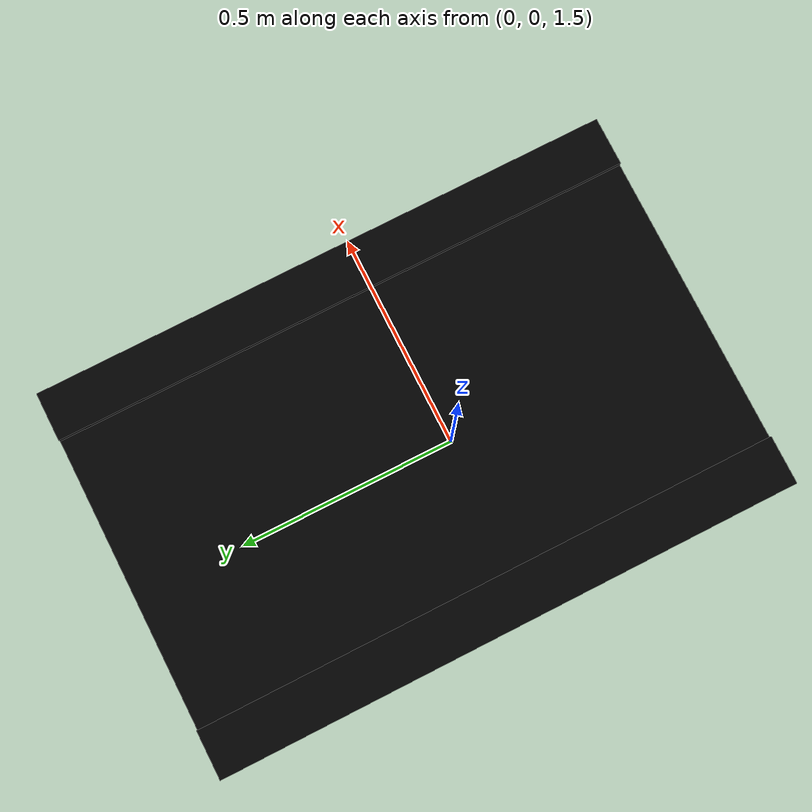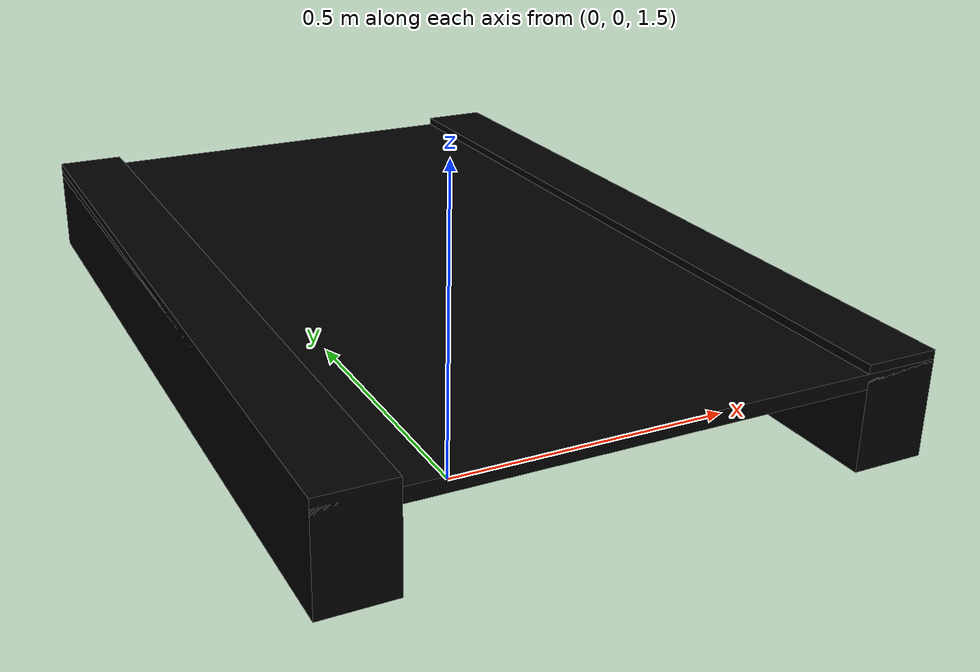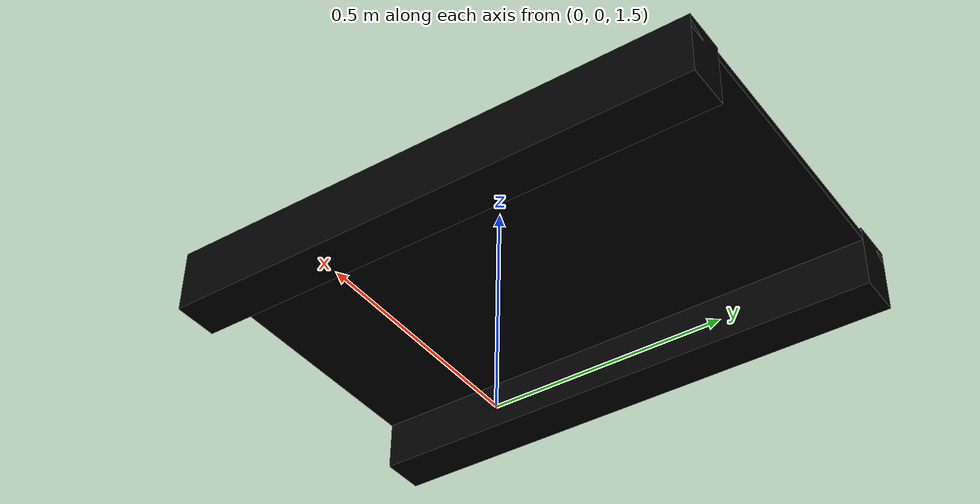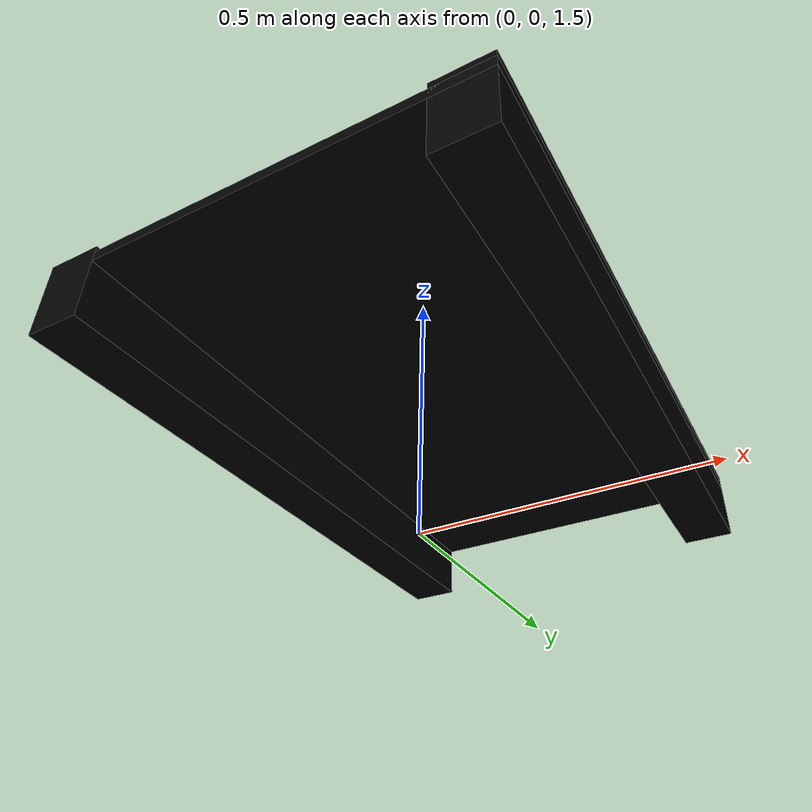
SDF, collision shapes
<?xml version='1.0'?>
<sdf version='1.7'>
  <model name='euro_pallet_slim_V1'>
    <link name='link'>
      <pose>-0.002462 0.088658 1.78053 0 -0 0</pose>
      <inertial>
        <mass>0.5</mass>
        <inertia>
          <ixx>0.1</ixx>
          <ixy>0</ixy>
          <ixz>0</ixz>
          <iyy>0.1</iyy>
          <iyz>0</iyz>
          <izz>0.1</izz>
        </inertia>
        <pose>0 0 0 0 -0 0</pose>
      </inertial>
      <self_collide>0</self_collide>
      <enable_wind>0</enable_wind>
      <kinematic>0</kinematic>
      <gravity>1</gravity>
      <visual name='visual'>
        <pose>0 0 0.05 0 -0 0</pose>
        <geometry>
          <mesh>
            <uri>model://euro_pallet/meshes/pallet.dae</uri>
            <scale>0.1 0.1 0.1</scale>
          </mesh>
        </geometry>
        <material>
          <shader type='pixel'>
            <normal_map>__default__</normal_map>
          </shader>
          <script>
            <name>ModelPreview_1::link::visual_MATERIAL_</name>
            <uri>__default__</uri>
          </script>
          <ambient>0 0 0 1</ambient>
          <diffuse>0 0 0 1</diffuse>
          <specular>0 0 0 1</specular>
          <emissive>0 0 0 1</emissive>
        </material>
        <transparency>0</transparency>
        <cast_shadows>1</cast_shadows>
      </visual>
      <collision name='collision_2'>
        <laser_retro>0</laser_retro>
        <max_contacts>10</max_contacts>
        <pose>-0.35 0 0 0 -0 0</pose>
        <geometry>
          <box>
            <size>0.1 1.2 0.144</size>
          </box>
        </geometry>
        <surface>
          <friction>
            <ode>
              <mu>1</mu>
              <mu2>1</mu2>
              <fdir1>0 0 0</fdir1>
              <slip1>0</slip1>
              <slip2>0</slip2>
            </ode>
            <torsional>
              <coefficient>1</coefficient>
              <patch_radius>0</patch_radius>
              <surface_radius>0</surface_radius>
              <use_patch_radius>1</use_patch_radius>
              <ode>
                <slip>0</slip>
              </ode>
            </torsional>
          </friction>
          <bounce>
            <restitution_coefficient>0</restitution_coefficient>
            <threshold>1e+06</threshold>
          </bounce>
          <contact>
            <collide_without_contact>0</collide_without_contact>
            <collide_without_contact_bitmask>1</collide_without_contact_bitmask>
            <collide_bitmask>1</collide_bitmask>
            <ode>
              <soft_cfm>0</soft_cfm>
              <soft_erp>0.2</soft_erp>
              <kp>1e+13</kp>
              <kd>1</kd>
              <max_vel>0.01</max_vel>
              <min_depth>0</min_depth>
            </ode>
            <bullet>
              <split_impulse>1</split_impulse>
              <split_impulse_penetration_threshold>-0.01</split_impulse_penetration_threshold>
              <soft_cfm>0</soft_cfm>
              <soft_erp>0.2</soft_erp>
              <kp>1e+13</kp>
              <kd>1</kd>
            </bullet>
          </contact>
        </surface>
      </collision>
      <collision name='collision_1'>
        <laser_retro>0</laser_retro>
        <max_contacts>10</max_contacts>
        <pose>0.35 0 0 0 -0 0</pose>
        <geometry>
          <box>
            <size>0.1 1.2 0.144</size>
          </box>
        </geometry>
        <surface>
          <friction>
            <ode>
              <mu>1</mu>
              <mu2>1</mu2>
              <fdir1>0 0 0</fdir1>
              <slip1>0</slip1>
              <slip2>0</slip2>
            </ode>
            <torsional>
              <coefficient>1</coefficient>
              <patch_radius>0</patch_radius>
              <surface_radius>0</surface_radius>
              <use_patch_radius>1</use_patch_radius>
              <ode>
                <slip>0</slip>
              </ode>
            </torsional>
          </friction>
          <bounce>
            <restitution_coefficient>0</restitution_coefficient>
            <threshold>1e+06</threshold>
          </bounce>
          <contact>
            <collide_without_contact>0</collide_without_contact>
            <collide_without_contact_bitmask>1</collide_without_contact_bitmask>
            <collide_bitmask>1</collide_bitmask>
            <ode>
              <soft_cfm>0</soft_cfm>
              <soft_erp>0.2</soft_erp>
              <kp>1e+13</kp>
              <kd>1</kd>
              <max_vel>0.01</max_vel>
              <min_depth>0</min_depth>
            </ode>
            <bullet>
              <split_impulse>1</split_impulse>
              <split_impulse_penetration_threshold>-0.01</split_impulse_penetration_threshold>
              <soft_cfm>0</soft_cfm>
              <soft_erp>0.2</soft_erp>
              <kp>1e+13</kp>
              <kd>1</kd>
            </bullet>
          </contact>
        </surface>
      </collision>
      <collision name='collision'>
        <laser_retro>0</laser_retro>
        <max_contacts>10</max_contacts>
        <pose>0 0 0.05 0 -0 0</pose>
        <geometry>
          <box>
            <size>0.8 1.2 0.02</size>
          </box>
        </geometry>
        <surface>
          <friction>
            <ode>
              <mu>1000</mu>
              <mu2>1000</mu2>
              <fdir1>0 0 0</fdir1>
              <slip1>0</slip1>
              <slip2>0</slip2>
            </ode>
            <torsional>
              <coefficient>1</coefficient>
              <patch_radius>0</patch_radius>
              <surface_radius>0</surface_radius>
              <use_patch_radius>1</use_patch_radius>
              <ode>
                <slip>0</slip>
              </ode>
            </torsional>
          </friction>
          <bounce>
            <restitution_coefficient>0</restitution_coefficient>
            <threshold>1e+06</threshold>
          </bounce>
          <contact>
            <collide_without_contact>0</collide_without_contact>
            <collide_without_contact_bitmask>1</collide_without_contact_bitmask>
            <collide_bitmask>1</collide_bitmask>
            <ode>
              <soft_cfm>0</soft_cfm>
              <soft_erp>0.2</soft_erp>
              <kp>1e+13</kp>
              <kd>1</kd>
              <max_vel>0.01</max_vel>
              <min_depth>0</min_depth>
            </ode>
            <bullet>
              <split_impulse>1</split_impulse>
              <split_impulse_penetration_threshold>-0.01</split_impulse_penetration_threshold>
              <soft_cfm>0</soft_cfm>
              <soft_erp>0.2</soft_erp>
              <kp>1e+13</kp>
              <kd>1</kd>
            </bullet>
          </contact>
        </surface>
      </collision>
    </link>
    <static>0</static>
    <allow_auto_disable>1</allow_auto_disable>
  </model>
</sdf>
